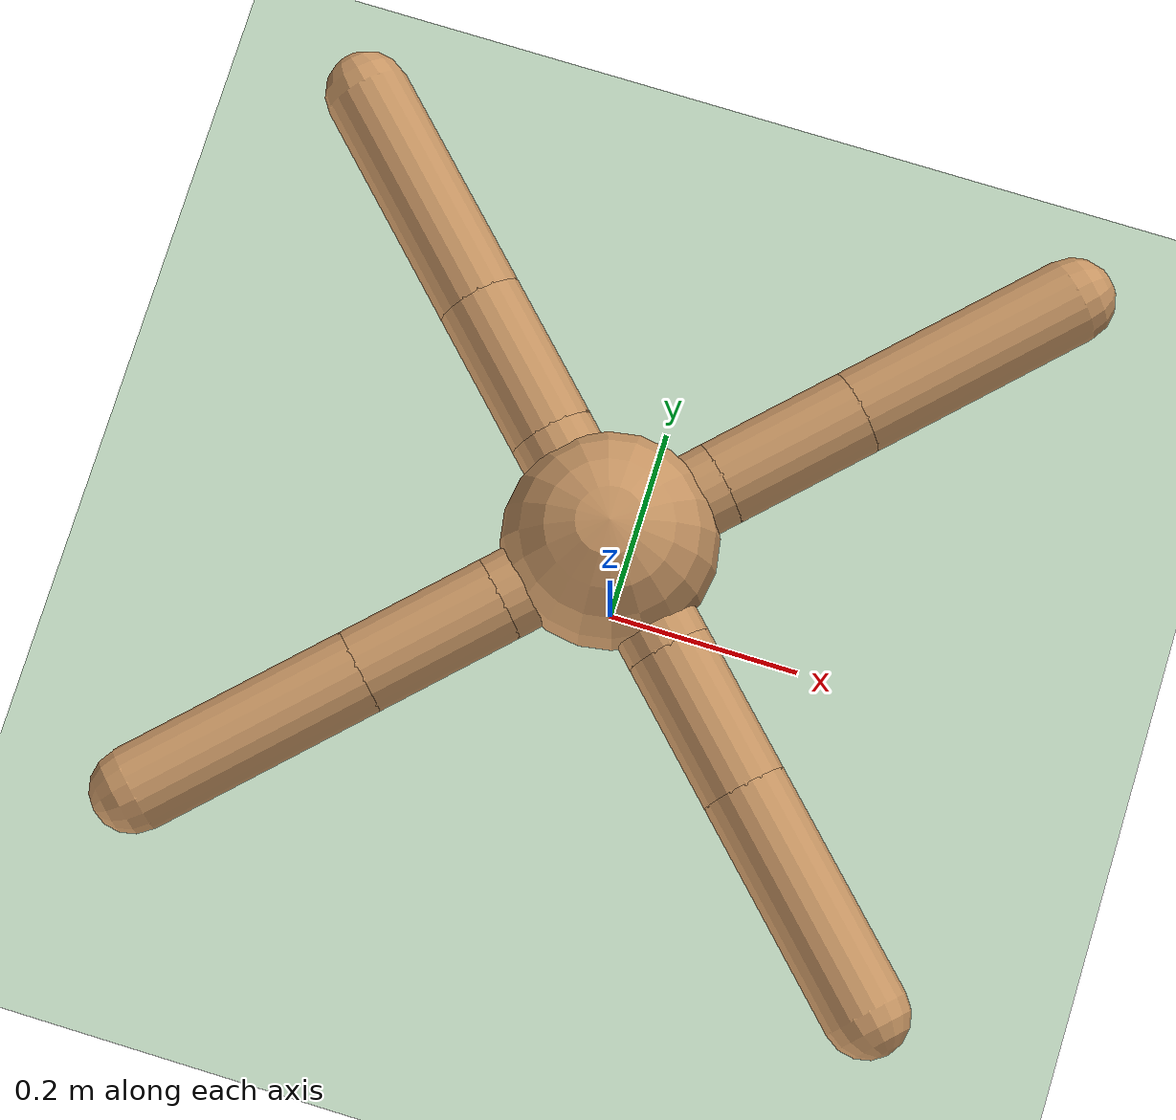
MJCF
<mujoco model="ant">
  <compiler angle="degree" coordinate="local" inertiafromgeom="true" settotalmass="24"/>
  <option integrator="RK4" timestep="0.01"/>
  <custom>
    <numeric data="0.0 0.0 0.25 1.0 0.0 0.0 0.0 0.0 1.0 0.0 -1.0 0.0 -1.0 0.0 1.0" name="init_qpos"/>
  </custom>
  <default>
    <joint armature="1" damping="1" limited="true"/>
    <geom conaffinity="0" condim="3" friction="1 0.5 0.5" margin="0.005" rgba="0.8 0.6 0.4 1"/>
    <velocity ctrlrange="-50.0 50.0" ctrllimited="true"/>
  </default>
  <asset>
    <texture builtin="gradient" height="100" rgb1="1 1 1" rgb2="0 0 0" type="skybox" width="100"/>
    <texture builtin="flat" height="1278" mark="cross" markrgb="1 1 1" name="texgeom" random="0.01" rgb1="0.8 0.6 0.4" rgb2="0.8 0.6 0.4" type="cube" width="127"/>
    <texture builtin="checker" height="100" name="texplane" rgb1="0 0 0" rgb2="0.8 0.8 0.8" type="2d" width="100"/>
    <material name="MatPlane" reflectance="0.5" shininess="1" specular="1" texrepeat="60 60" texture="texplane"/>
    <material name="geom" texture="texgeom" texuniform="true"/>
  </asset>
  <worldbody>
    <light cutoff="100" diffuse="1 1 1" dir="-0 0 -1.3" directional="true" exponent="1" pos="0 0 1.3" specular=".1 .1 .1"/>
    <geom conaffinity="1" condim="3" material="MatPlane" name="floor" pos="0 0 0" rgba="0.8 0.9 0.8 1" size="40 40 40" type="plane"/>
    <body name="torso" pos="0 0 0.4">
      <camera name="track" mode="trackcom" pos="0 -3 0.3" xyaxes="1 0 0 0 0 1"/>
      <geom name="torso_geom" pos="0 0 0" size="0.10" type="sphere"/>
      <joint armature="0" damping="0" limited="false" margin="0.005" name="root" pos="0 0 0" type="free"/>
      <body name="front_left_leg" pos="0 0 0">
        <geom fromto="0.0 0.0 0.0 0.08 0.08 0.0" name="aux_1_geom" size="0.04" type="capsule"/>
        <body name="aux_1" pos="0.08 0.08 0">
          <joint axis="0 0 1" name="hip_1" pos="0.0 0.0 0.0" range="-30 30" type="hinge"/>
          <geom fromto="0.0 0.0 0.0 0.1 0.1 0.0" name="left_leg_geom" size="0.04" type="capsule"/>
          <body pos="0.1 0.1 0">
            <joint axis="-1 1 0" name="ankle_1" pos="0.0 0.0 0.0" range="30 70" type="hinge"/>
            <geom fromto="0.0 0.0 0.0 0.16 0.16 0.0" name="left_ankle_geom" size="0.04" type="capsule"/>
          </body>
        </body>
      </body>
      <body name="front_right_leg" pos="0 0 0">
        <geom fromto="0.0 0.0 0.0 -0.08 0.08 0.0" name="aux_2_geom" size="0.04" type="capsule"/>
        <body name="aux_2" pos="-0.08 0.08 0">
          <joint axis="0 0 1" name="hip_2" pos="0.0 0.0 0.0" range="-30 30" type="hinge"/>
          <geom fromto="0.0 0.0 0.0 -0.1 0.1 0.0" name="right_leg_geom" size="0.04" type="capsule"/>
          <body pos="-0.1 0.1 0">
            <joint axis="1 1 0" name="ankle_2" pos="0.0 0.0 0.0" range="-70 -30" type="hinge"/>
            <geom fromto="0.0 0.0 0.0 -0.16 0.16 0.0" name="right_ankle_geom" size="0.04" type="capsule"/>
          </body>
        </body>
      </body>
      <body name="back_leg" pos="0 0 0">
        <geom fromto="0.0 0.0 0.0 -0.08 -0.08 0.0" name="aux_3_geom" size="0.04" type="capsule"/>
        <body name="aux_3" pos="-0.08 -0.08 0">
          <joint axis="0 0 1" name="hip_3" pos="0.0 0.0 0.0" range="-30 30" type="hinge"/>
          <geom fromto="0.0 0.0 0.0 -0.1 -0.1 0.0" name="back_leg_geom" size="0.04" type="capsule"/>
          <body pos="-0.1 -0.1 0">
            <joint axis="-1 1 0" name="ankle_3" pos="0.0 0.0 0.0" range="-70 -30" type="hinge"/>
            <geom fromto="0.0 0.0 0.0 -0.16 -0.16 0.0" name="third_ankle_geom" size="0.04" type="capsule"/>
          </body>
        </body>
      </body>
      <body name="right_back_leg" pos="0 0 0">
        <geom fromto="0.0 0.0 0.0 0.08 -0.08 0.0" name="aux_4_geom" size="0.04" type="capsule"/>
        <body name="aux_4" pos="0.08 -0.08 0">
          <joint axis="0 0 1" name="hip_4" pos="0.0 0.0 0.0" range="-30 30" type="hinge"/>
          <geom fromto="0.0 0.0 0.0 0.1 -0.1 0.0" name="rightback_leg_geom" size="0.04" type="capsule"/>
          <body pos="0.1 -0.1 0">
            <joint axis="1 1 0" name="ankle_4" pos="0.0 0.0 0.0" range="30 70" type="hinge"/>
            <geom fromto="0.0 0.0 0.0 0.16 -0.16 0.0" name="fourth_ankle_geom" size="0.04" type="capsule"/>
          </body>
        </body>
      </body>
    </body>
  </worldbody>
  <actuator>
    <velocity joint="hip_4"/>
    <velocity joint="ankle_4"/>
    <velocity joint="hip_1"/>
    <velocity joint="ankle_1"/>
    <velocity joint="hip_2"/>
    <velocity joint="ankle_2"/>
    <velocity joint="hip_3"/>
    <velocity joint="ankle_3"/>
  </actuator>
</mujoco>
